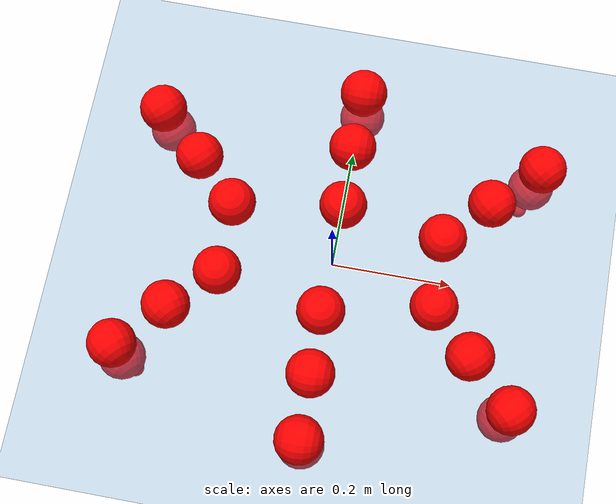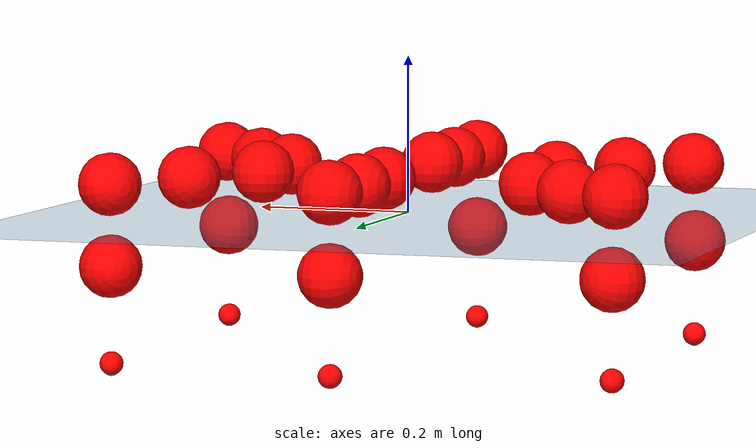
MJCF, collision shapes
<mujoco model="Golem">
  <compiler angle="radian" assetdir="assets" balanceinertia="true" inertiafromgeom="false"/>

  <option timestep="0.005" density="1.2" viscosity="2e-05"/>

  <size nkey="1"/>

  <visual>
    <quality shadowsize="8192"/>
    <map shadowclip="0.5"/>
  </visual>

  <default>
    <default class="/">
      <joint armature="0.01" damping="0.01" frictionloss="0.01"/>
      <geom contype="0" conaffinity="0" group="1" solref="-1000 -80"/>
      <site size="0.01 0.005 0.005" group="5"/>
      <general forcelimited="true" biastype="affine" gainprm="25" biasprm="0 -25 -0.5"/>
      <default class="visual">
        <geom type="mesh" group="2"/>
      </default>
      <default class="collision">
        <geom group="3"/>
      </default>
      <default class="foot">
        <geom size="0.01 0 0" condim="6" group="4" priority="1" solimp="0.015 1 0.01"/>
      </default>
      <default class="reward_collision_sphere">
        <geom group="5" rgba="1 0 0 1"/>
      </default>
    </default>
  </default>

  <asset>
    <texture type="skybox" colorspace="auto" name="//unnamed_texture_0" builtin="gradient" rgb1="0.95 0.95 0.95" rgb2="0.95 0.95 0.95" width="100" height="600"/>
    <texture type="2d" colorspace="auto" name="texplane" builtin="checker" rgb1="0.345 0.575 0.748" rgb2="0.345 0.575 0.748" markrgb="1 1 1" width="512" height="512"/>
    <material name="MatPlane" class="/" texture="texplane" texuniform="true" texrepeat="2 2" specular="0.9"/>
    <mesh name="body" class="/" file="body.stl" scale="0.001 0.001 0.001"/>
    <mesh name="coxa" class="/" file="coxa.stl" scale="0.001 0.001 0.001"/>
    <mesh name="femur" class="/" file="femur.stl" scale="0.001 0.001 0.001"/>
    <mesh name="tibia" class="/" file="tibia.stl" scale="0.001 0.001 0.001"/>
    <mesh name="tarsus" class="/" file="tarsus.stl" scale="0.001 0.001 0.001"/>
  </asset>

  <worldbody>
    <geom name="floor" class="/" size="100 100 0.125" type="plane" group="0" material="MatPlane"/>
    <light name="toplight_shadow" class="/" pos="0 0 5" dir="0.0990148 0.0990148 -0.990148" type="directional" ambient="0.04 0.04 0.04" diffuse="0.55 0.55 0.55" specular="0.12 0.12 0.12"/>
    <light name="toplight_fill" class="/" pos="0 0 5" dir="0.0990148 0.0990148 -0.990148" type="directional" castshadow="false" ambient="0.04 0.04 0.04" diffuse="0.3 0.3 0.3" specular="0.08 0.08 0.08"/>
    <body name="trunk" pos="-0.00224548 0.00237809 -0.00258563" quat="0.999999 -0.000761667 9.83886e-05 0.0010402">
      <inertial pos="-0.000660358 0.00235276 -0.0074862" quat="0.99998 0.00133347 0.00418428 0.00451491" mass="3.34713" diaginertia="0.0173914 0.00824829 0.00502516"/>
      <joint name="//unnamed_joint_0" type="free"/>
      <geom name="//unnamed_geom_1" class="/" pos="0 0 0.0564146" quat="1 0 0 0" type="mesh" rgba="0.9 0.9 0.9 1" mesh="body"/>
      <site name="imu" class="/" pos="0.154273 0.0108814 0.10347" size="0.009962"/>
      <camera name="track" class="/" pos="0 -1.93698 0" quat="0.707107 0.707107 0 0" mode="trackcom"/>
      <camera name="ego_camera" class="/" pos="0.148022 0 0.0881478" quat="-0.5 -0.5 0.5 0.5"/>
      <body name="coxa_RR" pos="-0.203065 -0.0826767 0.0544854" quat="0.382794 0.000368284 0.000396071 -0.923834">
        <inertial pos="0.000567396 -0.000990241 0.000682345" quat="0.999991 -0.00353228 0.00156401 -0.00170514" mass="0.191021" diaginertia="0.0188413 0.00825498 0.00538504"/>
        <joint name="coxa_joint_RR" class="/" pos="0 0 0" axis="0.0160228 0.0189023 -0.999693" range="-3.14541 3.12902" armature="0.0110424" damping="0.00264243" frictionloss="0.0101683"/>
        <geom name="//unnamed_geom_2" class="/" type="mesh" rgba="0.2 0.2 0.2 1" mesh="coxa"/>
        <geom name="//unnamed_geom_3" class="reward_collision_sphere" size="0.039848" pos="-0.0341589 0 0"/>
        <body name="femur_RR" pos="0.0656287 0.000525152 0.000790168" quat="0.500193 -0.500075 0.499897 0.499836">
          <inertial pos="0.00267898 -0.000914565 -0.000878228" quat="1 -0.000403045 0.000568923 -0.000138965" mass="0.196435" diaginertia="0.0188279 0.00869 0.00554619"/>
          <joint name="femur_joint_RR" class="/" pos="0 0 0" axis="0.00905204 -0.00730911 -0.999932" range="-3.13988 3.18753" armature="0.00991138" damping="0" frictionloss="0.0108941"/>
          <geom name="//unnamed_geom_4" class="/" type="mesh" rgba="0.9 0.9 0.9 1" mesh="femur"/>
          <geom name="//unnamed_geom_5" class="reward_collision_sphere" size="0.039848"/>
          <body name="tibia_RR" pos="-0.000794704 -0.105058 0.00473841" quat="-1.01124e-05 1 0.000147183 0.000192514">
            <inertial pos="-0.000979991 0.00361851 0.000715293" quat="0.999826 -0.0101695 0.0142355 0.00642831" mass="0.198181" diaginertia="0.0186813 0.00860314 0.00548963"/>
            <joint name="tibia_joint_RR" class="/" pos="0 0 0" axis="0.000898626 -0.00068081 0.999999" range="-3.13586 3.08739" armature="0.0101992" damping="0.0142819" frictionloss="0.00884722"/>
            <geom name="//unnamed_geom_6" class="/" type="mesh" rgba="0.2 0.2 0.2 1" mesh="tibia"/>
            <geom name="//unnamed_geom_7" class="reward_collision_sphere" size="0.039848"/>
            <body name="tarsus_RR" pos="0.100985 0.00401288 -0.00120331" quat="1 -0.000253011 0.000429047 0.000108837">
              <inertial pos="0.0696801 0.00126535 -5.5598e-05" quat="0.504748 0.490185 0.506094 0.498816" mass="0.190428" diaginertia="0.0180193 0.00839208 0.0053472"/>
              <joint name="tarsus_joint_RR" class="/" pos="0 0 0" axis="0.000310012 -0.00458569 0.999989" range="-3.14357 3.09354" armature="0.00862531" damping="0.0170624" frictionloss="0.00946046"/>
              <geom name="//unnamed_geom_8" class="/" type="mesh" rgba="0.9 0.9 0.9 1" mesh="tarsus"/>
              <geom name="foot_1" class="foot" size="0.0104615" pos="0.127527 0 0" quat="0 -0.707107 0 0.707107"/>
              <geom name="//unnamed_geom_10" class="reward_collision_sphere" size="0.039848"/>
              <geom name="//unnamed_geom_11" class="reward_collision_sphere" size="0.014943" pos="0.122403 0 0"/>
              <site name="foot_1" class="foot" pos="0.127527 0 0" quat="0 -0.707107 0 0.707107" size="0.009962"/>
            </body>
          </body>
        </body>
      </body>
      <body name="coxa_RM" pos="0.000143926 -0.129547 0.0585888" quat="0.707918 0.00124855 -0.00180096 -0.706291">
        <inertial pos="-6.69336e-05 -0.000336874 0.0018959" quat="0.999998 0.00124729 -0.00065928 -0.00118381" mass="0.191074" diaginertia="0.0193879 0.00836001 0.00525034"/>
        <joint name="coxa_joint_RM" class="/" pos="0 0 0" axis="0.00133087 0.00955987 -0.999953" stiffness="0.00498071" range="-3.11735 3.15544" armature="0.00971953" damping="0.0102636" frictionloss="0.0111043"/>
        <geom name="//unnamed_geom_12" class="/" type="mesh" rgba="0.2 0.2 0.2 1" mesh="coxa"/>
        <geom name="//unnamed_geom_13" class="reward_collision_sphere" size="0.039848" pos="-0.0341589 0 0"/>
        <body name="femur_RM" pos="0.0689222 0.00190861 -0.00261798" quat="0.500848 -0.499307 0.500206 0.499638">
          <inertial pos="-0.00353084 -0.000847951 -0.000739539" quat="0.999928 -0.00853959 0.00756479 -0.00371913" mass="0.204217" diaginertia="0.0204159 0.00874372 0.00574301"/>
          <joint name="femur_joint_RM" class="/" pos="0 0 0" axis="0.00174262 0.00119548 -0.999998" range="-3.12456 3.19609" armature="0.0112846" damping="0.00874042" frictionloss="0.00935258"/>
          <geom name="//unnamed_geom_14" class="/" type="mesh" rgba="0.9 0.9 0.9 1" mesh="femur"/>
          <geom name="//unnamed_geom_15" class="reward_collision_sphere" size="0.039848"/>
          <body name="tibia_RM" pos="-0.000793514 -0.10599 0.00135126" quat="-3.60439e-05 1 0.000283647 -0.000183434">
            <inertial pos="-0.000605956 -0.00471265 0.00130153" quat="0.999992 -0.0021165 0.00330836 -0.000681427" mass="0.201339" diaginertia="0.0188175 0.00832502 0.00521738"/>
            <joint name="tibia_joint_RM" class="/" pos="0 0 0" axis="0.00868333 -0.00201102 0.99996" range="-3.13483 3.14885" armature="0.00871506" damping="0" frictionloss="0.009884"/>
            <geom name="//unnamed_geom_16" class="/" type="mesh" rgba="0.2 0.2 0.2 1" mesh="tibia"/>
            <geom name="//unnamed_geom_17" class="reward_collision_sphere" size="0.039848"/>
            <body name="tarsus_RM" pos="0.104613 -0.0010265 0.000771301" quat="1 3.34809e-05 -1.89972e-05 1.6502e-05">
              <inertial pos="0.0662969 -0.000907015 0.00281787" quat="0.500397 0.498945 0.500567 0.50009" mass="0.185136" diaginertia="0.0190466 0.00831422 0.00500844"/>
              <joint name="tarsus_joint_RM" class="/" pos="0 0 0" axis="0.00689878 -0.0107945 0.999918" range="-3.12361 3.16783" armature="0.0104712" damping="0.00945969" frictionloss="0.0103673"/>
              <geom name="//unnamed_geom_18" class="/" type="mesh" rgba="0.9 0.9 0.9 1" mesh="tarsus"/>
              <geom name="foot_2" class="foot" size="0.0101326" pos="0.127527 0 0" quat="0 -0.707107 0 0.707107"/>
              <geom name="//unnamed_geom_20" class="reward_collision_sphere" size="0.039848"/>
              <geom name="//unnamed_geom_21" class="reward_collision_sphere" size="0.014943" pos="0.122403 0 0"/>
              <site name="foot_2" class="foot" pos="0.127527 0 0" quat="0 -0.707107 0 0.707107" size="0.009962"/>
            </body>
          </body>
        </body>
      </body>
      <body name="coxa_RF" pos="0.203119 -0.0793104 0.0544254" quat="0.92426 -0.000606394 0.000505694 -0.381763">
        <inertial pos="-0.00247735 0.00303937 -0.000781518" quat="0.9999 0.0139225 -0.00106462 -0.00242059" mass="0.201258" diaginertia="0.0186552 0.0085167 0.00531244"/>
        <joint name="coxa_joint_RF" class="/" pos="0 0 0" axis="0.00337181 0.00805202 -0.999962" stiffness="0.00656087" range="-3.20649 3.16595" armature="0.0108159" damping="0.00571664" frictionloss="0.0100431"/>
        <geom name="//unnamed_geom_22" class="/" type="mesh" rgba="0.2 0.2 0.2 1" mesh="coxa"/>
        <geom name="//unnamed_geom_23" class="reward_collision_sphere" size="0.039848" pos="-0.0341589 0 0"/>
        <body name="femur_RF" pos="0.0650151 -0.00155521 0.000184221" quat="0.499975 -0.499961 0.499857 0.500206">
          <inertial pos="0.000434336 -0.00297067 0.000588366" quat="0.999919 -0.0077745 0.0099459 -0.00183814" mass="0.194578" diaginertia="0.0178254 0.0080369 0.00490645"/>
          <joint name="femur_joint_RF" class="/" pos="0 0 0" axis="6.33602e-05 -0.00719627 -0.999974" range="-3.16291 3.10682" armature="0.00988242" damping="0.000832599" frictionloss="0.00915706"/>
          <geom name="//unnamed_geom_24" class="/" type="mesh" rgba="0.9 0.9 0.9 1" mesh="femur"/>
          <geom name="//unnamed_geom_25" class="reward_collision_sphere" size="0.039848"/>
          <body name="tibia_RF" pos="0.000292729 -0.105843 0.00154359" quat="-0.000377923 1 1.34829e-05 -0.000153992">
            <inertial pos="-0.000383186 0.000388016 0.00423274" quat="0.999951 -9.45874e-05 -0.00980066 0.00135252" mass="0.194886" diaginertia="0.0179345 0.00852559 0.00508416"/>
            <joint name="tibia_joint_RF" class="/" pos="0 0 0" axis="0.00921742 0.00101746 0.999957" range="-3.13991 3.16259" armature="0.0098601" damping="0.0124211" frictionloss="0.0104931"/>
            <geom name="//unnamed_geom_26" class="/" type="mesh" rgba="0.2 0.2 0.2 1" mesh="tibia"/>
            <geom name="//unnamed_geom_27" class="reward_collision_sphere" size="0.039848"/>
            <body name="tarsus_RF" pos="0.0996923 7.90829e-05 0.000996095" quat="1 -0.000223301 0.000194728 -0.000197183">
              <inertial pos="0.0666758 0.00247233 0.00232517" quat="0.499972 0.500143 0.499892 0.499992" mass="0.201761" diaginertia="0.0187072 0.00886968 0.00563548"/>
              <joint name="tarsus_joint_RF" class="/" pos="0 0 0" axis="-0.00132928 -0.00426505 0.99999" stiffness="0.0294198" range="-3.16032 3.13441" armature="0.0113404" damping="0.0240831" frictionloss="0.0111604"/>
              <geom name="//unnamed_geom_28" class="/" type="mesh" rgba="0.9 0.9 0.9 1" mesh="tarsus"/>
              <geom name="foot_3" class="foot" size="0.0103256" pos="0.127527 0 0" quat="0 -0.707107 0 0.707107"/>
              <geom name="//unnamed_geom_30" class="reward_collision_sphere" size="0.039848"/>
              <geom name="//unnamed_geom_31" class="reward_collision_sphere" size="0.014943" pos="0.122403 0 0"/>
              <site name="foot_3" class="foot" pos="0.127527 0 0" quat="0 -0.707107 0 0.707107" size="0.009962"/>
            </body>
          </body>
        </body>
      </body>
      <body name="coxa_LR" pos="-0.203418 0.086021 0.0509353" quat="0.383517 0.000230307 -0.000117839 0.923534">
        <inertial pos="0.000388154 0.000856071 0.00175099" quat="0.999994 -0.00266703 0.00138781 0.00185212" mass="0.204433" diaginertia="0.0181361 0.00860377 0.0056414"/>
        <joint name="coxa_joint_LR" class="/" pos="0 0 0" axis="-0.00636297 0.00500067 -0.999967" stiffness="0.0021367" range="-3.15968 3.17444" armature="0.0109405" damping="0" frictionloss="0.0103192"/>
        <geom name="//unnamed_geom_32" class="/" type="mesh" rgba="0.2 0.2 0.2 1" mesh="coxa"/>
        <geom name="//unnamed_geom_33" class="reward_collision_sphere" size="0.039848" pos="-0.0341589 0 0"/>
        <body name="femur_LR" pos="0.0663185 -0.000374284 -0.000796013" quat="0.499682 -0.500452 0.498877 0.500987">
          <inertial pos="0.00152857 0.00492415 0.0018077" quat="0.999999 -0.00106483 0.000662992 -0.00049564" mass="0.198237" diaginertia="0.0199286 0.00849439 0.00557799"/>
          <joint name="femur_joint_LR" class="/" pos="0 0 0" axis="-0.000451972 0.0042233 0.999991" range="-3.18881 3.15134" armature="0.00914352" damping="0.0372351" frictionloss="0.00994192"/>
          <geom name="//unnamed_geom_34" class="/" type="mesh" rgba="0.9 0.9 0.9 1" mesh="femur"/>
          <geom name="//unnamed_geom_35" class="reward_collision_sphere" size="0.039848"/>
          <body name="tibia_LR" pos="-0.00350724 -0.105869 0.00429247" quat="-0.000117629 1 0.000556739 0.000127609">
            <inertial pos="0.00104421 0.000900291 -0.000641561" quat="0.99995 0.00435921 -0.00868076 -0.00219675" mass="0.20914" diaginertia="0.0200547 0.00870395 0.00547776"/>
            <joint name="tibia_joint_LR" class="/" pos="0 0 0" axis="0.00149724 0.0138084 -0.999904" stiffness="0.013323" range="-3.11661 3.08597" armature="0.011192" damping="0" frictionloss="0.0100907"/>
            <geom name="//unnamed_geom_36" class="/" type="mesh" rgba="0.2 0.2 0.2 1" mesh="tibia"/>
            <geom name="//unnamed_geom_37" class="reward_collision_sphere" size="0.039848"/>
            <body name="tarsus_LR" pos="0.0998907 0.00165125 0.00451395" quat="1 -1.43075e-05 -6.65954e-05 -0.000161495">
              <inertial pos="0.0636588 0.00364354 0.00253188" quat="0.503612 0.50631 0.496678 0.493292" mass="0.195884" diaginertia="0.0194219 0.00828966 0.00542085"/>
              <joint name="tarsus_joint_LR" class="/" pos="0 0 0" axis="-0.00242205 -0.0127729 -0.999915" stiffness="0.0118045" range="-3.17951 3.12187" armature="0.0100338" damping="0.0168994" frictionloss="0.00955992"/>
              <geom name="//unnamed_geom_38" class="/" type="mesh" rgba="0.9 0.9 0.9 1" mesh="tarsus"/>
              <geom name="foot_4" class="foot" size="0.00823547" pos="0.127527 0 0" quat="0.707107 0 -0.707107 0"/>
              <geom name="//unnamed_geom_40" class="reward_collision_sphere" size="0.039848"/>
              <geom name="//unnamed_geom_41" class="reward_collision_sphere" size="0.014943" pos="0.122403 0 0"/>
              <site name="foot_4" class="foot" pos="0.127527 0 0" quat="0.707107 0 -0.707107 0" size="0.009962"/>
            </body>
          </body>
        </body>
      </body>
      <body name="coxa_LM" pos="0.00404175 0.122933 0.0546182" quat="0.707055 4.85562e-06 -0.000594234 0.707158">
        <inertial pos="-0.00194538 0.000276593 0.00247166" quat="0.999946 0.00899986 0.00325099 0.00412126" mass="0.19062" diaginertia="0.018735 0.00805474 0.00501642"/>
        <joint name="coxa_joint_LM" class="/" pos="0 0 0" axis="0.0224287 0.00133528 -0.999748" range="-3.14046 3.19007" armature="0.0111268" damping="0.00605569" frictionloss="0.010305"/>
        <geom name="//unnamed_geom_42" class="/" type="mesh" rgba="0.2 0.2 0.2 1" mesh="coxa"/>
        <geom name="//unnamed_geom_43" class="reward_collision_sphere" size="0.039848" pos="-0.0341589 0 0"/>
        <body name="femur_LM" pos="0.0692587 0.00217291 0.00102593" quat="0.499832 -0.500093 0.500084 0.499991">
          <inertial pos="-0.000231328 -0.00247344 -0.00267513" quat="0.999994 0.00299842 -0.00139965 0.000711244" mass="0.200612" diaginertia="0.0195744 0.0080559 0.0051046"/>
          <joint name="femur_joint_LM" class="/" pos="0 0 0" axis="-0.000654412 -0.00332659 0.999994" stiffness="0.0104448" range="-3.08806 3.16516" armature="0.00874541" damping="0.00991618" frictionloss="0.00997492"/>
          <geom name="//unnamed_geom_44" class="/" type="mesh" rgba="0.9 0.9 0.9 1" mesh="femur"/>
          <geom name="//unnamed_geom_45" class="reward_collision_sphere" size="0.039848"/>
          <body name="tibia_LM" pos="-0.000888976 -0.100078 -0.00186828" quat="0.000221616 1 -1.73644e-05 -0.000707049">
            <inertial pos="0.000533608 -0.000180019 0.00189622" quat="0.999924 -0.0114414 0.00455643 0.000402944" mass="0.190597" diaginertia="0.0185323 0.00786731 0.00500944"/>
            <joint name="tibia_joint_LM" class="/" pos="0 0 0" axis="0.0054635 0.00365727 -0.999978" stiffness="0.0180757" range="-3.12575 3.13767" armature="0.0104241" damping="0.0104863" frictionloss="0.0105623"/>
            <geom name="//unnamed_geom_46" class="/" type="mesh" rgba="0.2 0.2 0.2 1" mesh="tibia"/>
            <geom name="//unnamed_geom_47" class="reward_collision_sphere" size="0.039848"/>
            <body name="tarsus_LM" pos="0.10118 -0.00148222 4.00712e-05" quat="0.999999 0.000628062 -0.000469841 -0.000644323">
              <inertial pos="0.0691884 0.00056214 0.00127819" quat="0.492315 0.495376 0.508496 0.503647" mass="0.188697" diaginertia="0.0177023 0.00812012 0.005218"/>
              <joint name="tarsus_joint_LM" class="/" pos="0 0 0" axis="0.00444113 -0.0205344 -0.999779" range="-3.10981 3.11477" armature="0.00937854" damping="0.0199346" frictionloss="0.00876921"/>
              <geom name="//unnamed_geom_48" class="/" type="mesh" rgba="0.9 0.9 0.9 1" mesh="tarsus"/>
              <geom name="foot_5" class="foot" size="0.00975788" pos="0.127527 0 0" quat="0.707107 0 -0.707107 0"/>
              <geom name="//unnamed_geom_50" class="reward_collision_sphere" size="0.039848"/>
              <geom name="//unnamed_geom_51" class="reward_collision_sphere" size="0.014943" pos="0.122403 0 0"/>
              <site name="foot_5" class="foot" pos="0.127527 0 0" quat="0.707107 0 -0.707107 0" size="0.009962"/>
            </body>
          </body>
        </body>
      </body>
      <body name="coxa_LF" pos="0.199741 0.0851101 0.055392" quat="0.92403 0.000786271 -0.000914713 0.382319">
        <inertial pos="-0.00113997 -0.000352791 -0.00186681" quat="0.999996 0.0027929 -8.35715e-05 -3.63329e-05" mass="0.195457" diaginertia="0.0196523 0.0081898 0.0052771"/>
        <joint name="coxa_joint_LF" class="/" pos="0 0 0" axis="0.00173108 0.00586746 -0.999981" stiffness="0.00388408" range="-3.18452 3.14893" armature="0.0105937" damping="0.00532214" frictionloss="0.00760031"/>
        <geom name="//unnamed_geom_52" class="/" type="mesh" rgba="0.2 0.2 0.2 1" mesh="coxa"/>
        <geom name="//unnamed_geom_53" class="reward_collision_sphere" size="0.039848" pos="-0.0341589 0 0"/>
        <body name="femur_LF" pos="0.0691581 0.00210649 -0.0026343" quat="0.500114 -0.50049 0.499029 0.500366">
          <inertial pos="0.00441261 0.00106775 -0.00484927" quat="0.999984 0.00118731 -0.00547779 0.000956283" mass="0.194645" diaginertia="0.0185927 0.00876364 0.00529321"/>
          <joint name="femur_joint_LF" class="/" pos="0 0 0" axis="-0.000539311 0.00180231 0.999998" stiffness="0.00821871" range="-3.1333 3.12461" armature="0.0102918" damping="0.0154884" frictionloss="0.0112461"/>
          <geom name="//unnamed_geom_54" class="/" type="mesh" rgba="0.9 0.9 0.9 1" mesh="femur"/>
          <geom name="//unnamed_geom_55" class="reward_collision_sphere" size="0.039848"/>
          <body name="tibia_LF" pos="0.00419322 -0.107707 0.000167449" quat="-0.000344355 1 5.09779e-05 0.000118461">
            <inertial pos="-0.00176604 0.00436121 -0.00207543" quat="1 2.19377e-05 0.000110262 -0.000933627" mass="0.215756" diaginertia="0.0213115 0.00913405 0.0058252"/>
            <joint name="tibia_joint_LF" class="/" pos="0 0 0" axis="-0.0047459 -0.0031414 -0.999984" range="-3.13008 3.17599" armature="0.00994031" damping="0.00670462" frictionloss="0.00983422"/>
            <geom name="//unnamed_geom_56" class="/" type="mesh" rgba="0.2 0.2 0.2 1" mesh="tibia"/>
            <geom name="//unnamed_geom_57" class="reward_collision_sphere" size="0.039848"/>
            <body name="tarsus_LF" pos="0.102556 0.00101206 -0.00376276" quat="0.999999 0.000573837 0.000952445 -0.000158137">
              <inertial pos="0.071105 0.00128796 -0.00244398" quat="0.501113 0.499748 0.498415 0.50072" mass="0.210664" diaginertia="0.0207463 0.00912039 0.00574974"/>
              <joint name="tarsus_joint_LF" class="/" pos="0 0 0" axis="-0.00136776 -0.0109892 -0.999939" stiffness="0.00194954" range="-3.09141 3.14444" armature="0.00943166" damping="0.0245116" frictionloss="0.011962"/>
              <geom name="//unnamed_geom_58" class="/" type="mesh" rgba="0.9 0.9 0.9 1" mesh="tarsus"/>
              <geom name="foot_6" class="foot" size="0.01084" pos="0.127527 0 0" quat="0.707107 0 -0.707107 0"/>
              <geom name="//unnamed_geom_60" class="reward_collision_sphere" size="0.039848"/>
              <geom name="//unnamed_geom_61" class="reward_collision_sphere" size="0.014943" pos="0.122403 0 0"/>
              <site name="foot_6" class="foot" pos="0.127527 0 0" quat="0.707107 0 -0.707107 0" size="0.009962"/>
            </body>
          </body>
        </body>
      </body>
    </body>
  </worldbody>

  <contact>
    <pair class="/" geom1="floor" geom2="foot_1" name="//unnamed_contact_0"/>
    <pair class="/" geom1="floor" geom2="foot_2" name="//unnamed_contact_1"/>
    <pair class="/" geom1="floor" geom2="foot_3" name="//unnamed_contact_2"/>
    <pair class="/" geom1="floor" geom2="foot_4" name="//unnamed_contact_3"/>
    <pair class="/" geom1="floor" geom2="foot_5" name="//unnamed_contact_4"/>
    <pair class="/" geom1="floor" geom2="foot_6" name="//unnamed_contact_5"/>
  </contact>

  <actuator>
    <general name="coxa_joint_RR" class="/" joint="coxa_joint_RR" forcerange="-6.63459 6.63459" gainprm="23.3194" biasprm="0 -23.3194 -0.467458"/>
    <general name="femur_joint_RR" class="/" joint="femur_joint_RR" forcerange="-6.87261 6.87261" gainprm="23.3194" biasprm="0 -23.3194 -0.467458"/>
    <general name="tibia_joint_RR" class="/" joint="tibia_joint_RR" forcerange="-6.57742 6.57742" gainprm="23.3194" biasprm="0 -23.3194 -0.467458"/>
    <general name="tarsus_joint_RR" class="/" joint="tarsus_joint_RR" forcerange="-6.68697 6.68697" gainprm="23.3194" biasprm="0 -23.3194 -0.467458"/>
    <general name="coxa_joint_RM" class="/" joint="coxa_joint_RM" forcerange="-7.70409 7.70409" gainprm="23.3194" biasprm="0 -23.3194 -0.467458"/>
    <general name="femur_joint_RM" class="/" joint="femur_joint_RM" forcerange="-7.33155 7.33155" gainprm="23.3194" biasprm="0 -23.3194 -0.467458"/>
    <general name="tibia_joint_RM" class="/" joint="tibia_joint_RM" forcerange="-7.03372 7.03372" gainprm="23.3194" biasprm="0 -23.3194 -0.467458"/>
    <general name="tarsus_joint_RM" class="/" joint="tarsus_joint_RM" forcerange="-6.28508 6.28508" gainprm="23.3194" biasprm="0 -23.3194 -0.467458"/>
    <general name="coxa_joint_RF" class="/" joint="coxa_joint_RF" forcerange="-7.6089 7.6089" gainprm="23.3194" biasprm="0 -23.3194 -0.467458"/>
    <general name="femur_joint_RF" class="/" joint="femur_joint_RF" forcerange="-8.12059 8.12059" gainprm="23.3194" biasprm="0 -23.3194 -0.467458"/>
    <general name="tibia_joint_RF" class="/" joint="tibia_joint_RF" forcerange="-7.37816 7.37816" gainprm="23.3194" biasprm="0 -23.3194 -0.467458"/>
    <general name="tarsus_joint_RF" class="/" joint="tarsus_joint_RF" forcerange="-7.28369 7.28369" gainprm="23.3194" biasprm="0 -23.3194 -0.467458"/>
    <general name="coxa_joint_LR" class="/" joint="coxa_joint_LR" forcerange="-7.05078 7.05078" gainprm="23.3194" biasprm="0 -23.3194 -0.467458"/>
    <general name="femur_joint_LR" class="/" joint="femur_joint_LR" forcerange="-7.31143 7.31143" gainprm="23.3194" biasprm="0 -23.3194 -0.467458"/>
    <general name="tibia_joint_LR" class="/" joint="tibia_joint_LR" forcerange="-7.38936 7.38936" gainprm="23.3194" biasprm="0 -23.3194 -0.467458"/>
    <general name="tarsus_joint_LR" class="/" joint="tarsus_joint_LR" forcerange="-7.06487 7.06487" gainprm="23.3194" biasprm="0 -23.3194 -0.467458"/>
    <general name="coxa_joint_LM" class="/" joint="coxa_joint_LM" forcerange="-6.63081 6.63081" gainprm="23.3194" biasprm="0 -23.3194 -0.467458"/>
    <general name="femur_joint_LM" class="/" joint="femur_joint_LM" forcerange="-7.16259 7.16259" gainprm="23.3194" biasprm="0 -23.3194 -0.467458"/>
    <general name="tibia_joint_LM" class="/" joint="tibia_joint_LM" forcerange="-6.66771 6.66771" gainprm="23.3194" biasprm="0 -23.3194 -0.467458"/>
    <general name="tarsus_joint_LM" class="/" joint="tarsus_joint_LM" forcerange="-6.5931 6.5931" gainprm="23.3194" biasprm="0 -23.3194 -0.467458"/>
    <general name="coxa_joint_LF" class="/" joint="coxa_joint_LF" forcerange="-7.81865 7.81865" gainprm="23.3194" biasprm="0 -23.3194 -0.467458"/>
    <general name="femur_joint_LF" class="/" joint="femur_joint_LF" forcerange="-7.05478 7.05478" gainprm="23.3194" biasprm="0 -23.3194 -0.467458"/>
    <general name="tibia_joint_LF" class="/" joint="tibia_joint_LF" forcerange="-7.50268 7.50268" gainprm="23.3194" biasprm="0 -23.3194 -0.467458"/>
    <general name="tarsus_joint_LF" class="/" joint="tarsus_joint_LF" forcerange="-6.62995 6.62995" gainprm="23.3194" biasprm="0 -23.3194 -0.467458"/>
  </actuator>

  <sensor>
    <gyro site="imu" name="imu_angular_velocity"/>
    <velocimeter site="imu" name="imu_linear_velocity"/>
    <framelinvel objtype="site" objname="foot_1" name="foot_1_global_linear_velocity"/>
    <framelinvel objtype="site" objname="foot_2" name="foot_2_global_linear_velocity"/>
    <framelinvel objtype="site" objname="foot_3" name="foot_3_global_linear_velocity"/>
    <framelinvel objtype="site" objname="foot_4" name="foot_4_global_linear_velocity"/>
    <framelinvel objtype="site" objname="foot_5" name="foot_5_global_linear_velocity"/>
    <framelinvel objtype="site" objname="foot_6" name="foot_6_global_linear_velocity"/>
  </sensor>

  <keyframe>
    <key name="home" qpos="0 0 0.1457 1 0 0 0 0 0 0 0 0 0 0 0 0 0 0 0 0 0 0 0 0 0 0 0 0 0 0 0"/>
  </keyframe>
</mujoco>
